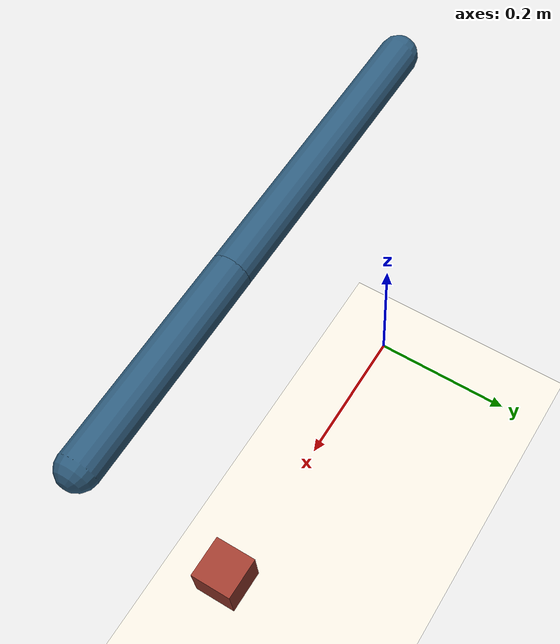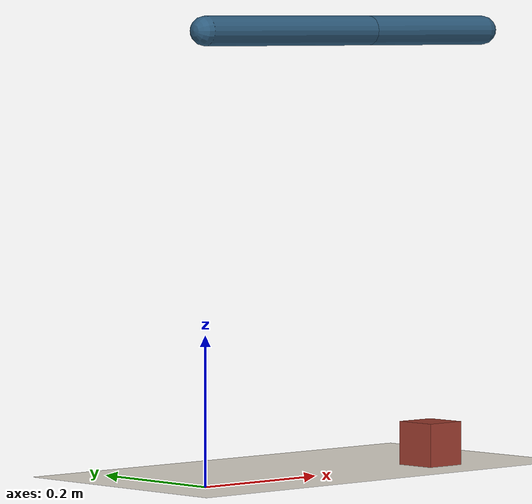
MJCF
<mujoco model="two-link">
  <!-- Global physics settings. Everything here applies to the whole scene. -->
  <option gravity="0 0 -9.81" timestep="0.002"/>

  <!-- Defaults are the stylesheet: attributes every element inherits unless it says otherwise. -->
  <default>
    <joint type="hinge" axis="0 1 0" damping="0.4"/>
    <geom type="capsule" size="0.02" rgba="0.18 0.36 0.49 1"/>
    <position kp="12" kv="1.2"/>
    <default class="cube">
      <geom type="box" size="0.03 0.03 0.03" rgba="0.61 0.23 0.18 1"/>
    </default>
  </default>

  <!-- The tree. Nesting is parenthood; pos/quat are relative to the parent body. -->
  <worldbody>
    <light pos="0 0 2" dir="0 0 -1"/>
    <geom name="floor" type="plane" size="2 2 0.05" rgba="0.92 0.90 0.85 1"/>

    <body name="upper_arm" pos="0 0 0.6">
      <joint name="shoulder"/>
      <geom name="upper_arm" fromto="0 0 0  0.30 0 0"/>

      <body name="forearm" pos="0.30 0 0">
        <joint name="elbow"/>
        <geom name="forearm" fromto="0 0 0  0.22 0 0"/>
        <!-- A site is a labelled point: no mass, no collision, just somewhere to measure. -->
        <site name="tip" pos="0.22 0 0" size="0.012" rgba="0.08 0.38 0.31 1"/>
      </body>
    </body>

    <body name="cube" pos="0.42 0 0.03">
      <freejoint name="cube_free"/>
      <geom name="cube" class="cube"/>
    </body>
  </worldbody>

  <!-- Actuators are a flat list, not part of the tree. They name the joint they drive. -->
  <actuator>
    <position name="shoulder" joint="shoulder" ctrlrange="-3.14 3.14"/>
    <position name="elbow" joint="elbow" ctrlrange="-2.60 2.60"/>
  </actuator>

  <!-- Sensors are also a flat list. This one reports the tip's world position every step. -->
  <sensor>
    <framepos name="tip_pos" objtype="site" objname="tip"/>
    <jointpos name="shoulder_q" joint="shoulder"/>
  </sensor>

  <!-- qpos order follows the tree: shoulder, elbow, then the cube's 7-number free joint. -->
  <keyframe>
    <key name="home" qpos="-0.9 1.6  0.42 0 0.03  1 0 0 0"/>
  </keyframe>
</mujoco>
